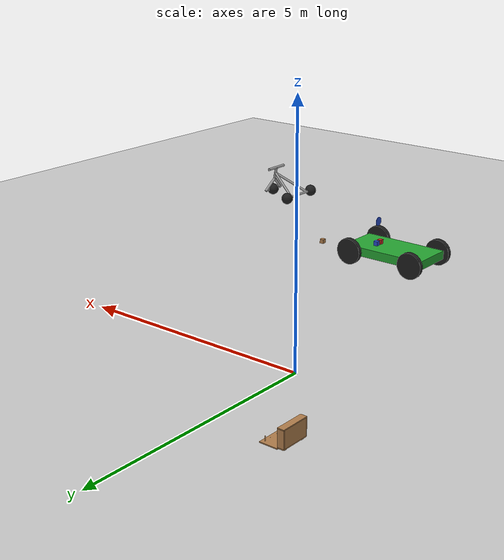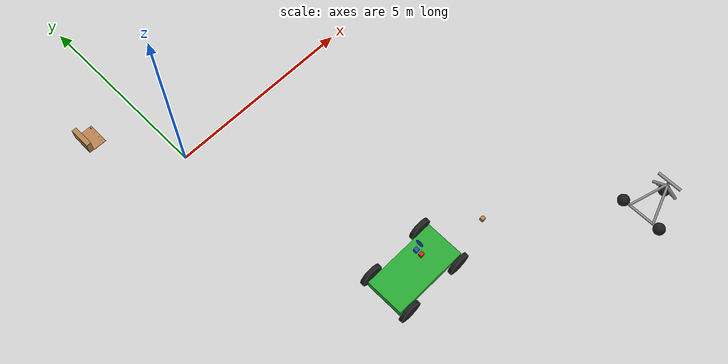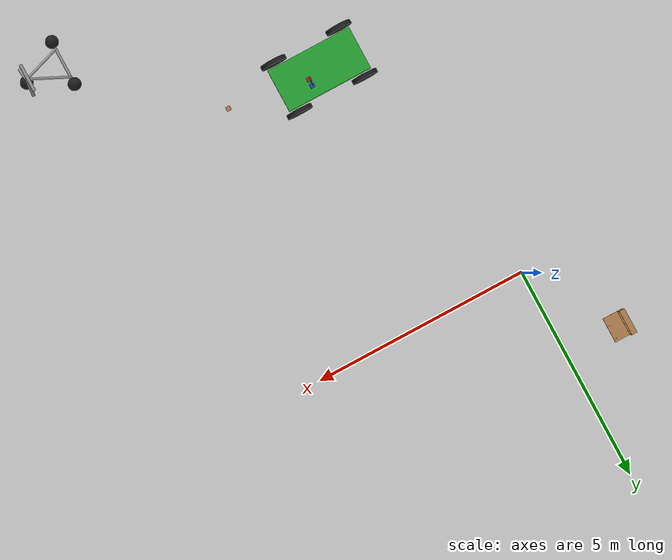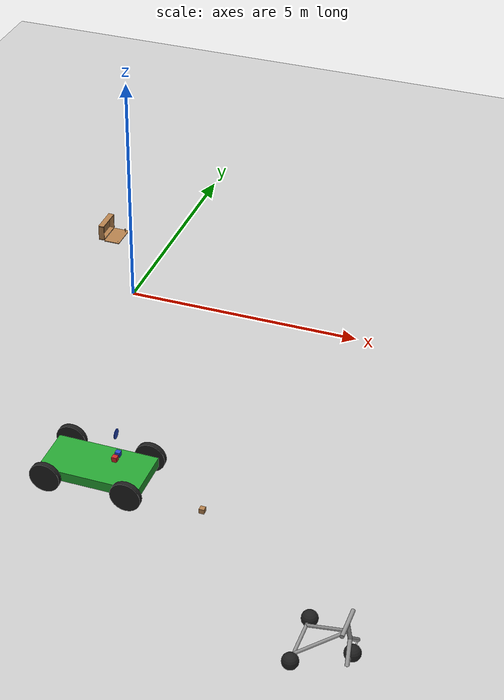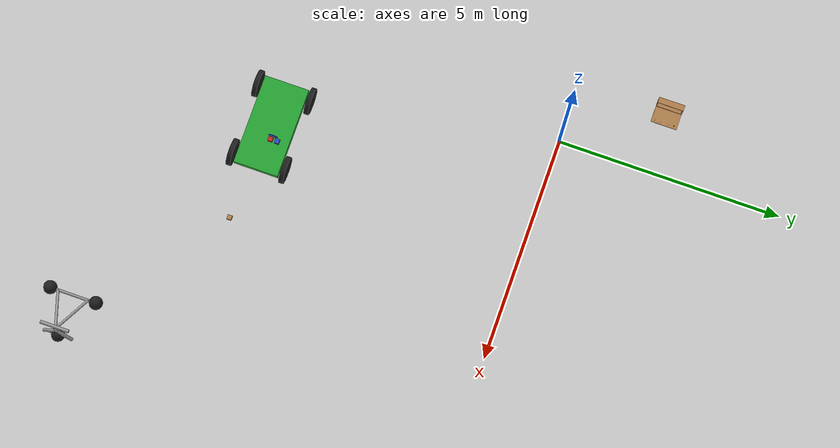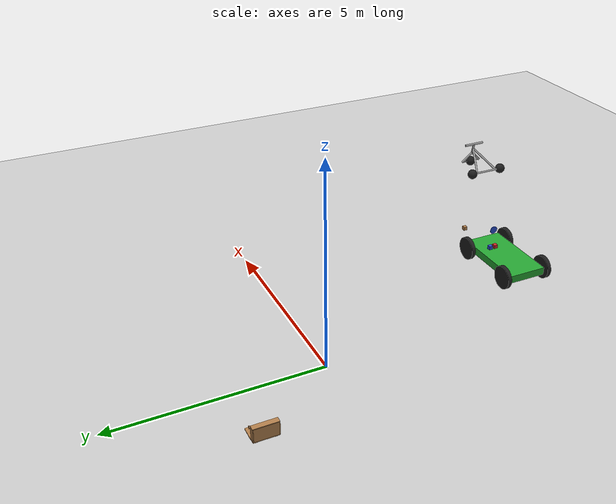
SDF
<sdf version="1.6">
 <world name="default">
  <light name="sun" type="directional">
   <cast_shadows>0</cast_shadows>
   <pose>0 0 10 0 -0 0</pose>
   <diffuse>0.8 0.8 0.8 1</diffuse>
   <specular>0.1 0.1 0.1 1</specular>
   <attenuation>
    <range>1000</range>
    <constant>0.9</constant>
    <linear>0.01</linear>
    <quadratic>0.001</quadratic>
   </attenuation>
   <direction>-0.5 0.5 -1</direction>
  </light>
  <model name="ground_plane">
   <static>1</static>
   <link name="link">
    <collision name="collision">
     <geometry><plane><normal>0 0 1</normal><size>100 100</size></plane></geometry>
     <surface><friction><ode><mu>100</mu><mu2>50</mu2></ode></friction></surface>
    </collision>
    <visual name="visual">
     <cast_shadows>0</cast_shadows>
     <geometry><plane><normal>0 0 1</normal><size>100 100</size></plane></geometry>
     <material>
      <script><uri>file://media/materials/scripts/gazebo.material</uri><name>Gazebo/Grey</name></script>
     </material>
    </visual>
   </link>
  </model>
  <gravity>0 0 -9.8</gravity>
  <magnetic_field>6e-06 2.3e-05 -4.2e-05</magnetic_field>
  <atmosphere type="adiabatic"/>
  <physics name="default_physics" default="0" type="ode">
   <max_step_size>0.001</max_step_size>
   <real_time_factor>1</real_time_factor>
   <real_time_update_rate>1000</real_time_update_rate>
  </physics>
  <scene><ambient>0.4 0.4 0.4 1</ambient><background>0.7 0.7 0.7 1</background><shadows>1</shadows></scene>
  <spherical_coordinates>
   <surface_model>EARTH_WGS84</surface_model>
   <latitude_deg>0</latitude_deg>
   <longitude_deg>0</longitude_deg>
   <elevation>0</elevation>
   <heading_deg>0</heading_deg>
  </spherical_coordinates>
  <model name="wooden_case_wooden_peg">
   <link name="wooden_case::base">
    <pose>0 0 0.024 0 -0 0</pose>
    <inertial>
     <pose>-0.022184 0 0.171592 0 -0 0</pose>
     <mass>3.96264</mass>
     <inertia>
      <ixx>0.213536</ixx>
      <ixy>0</ixy>
      <ixz>0.000779377</ixz>
      <iyy>0.0708943</iyy>
      <iyz>0</iyz>
      <izz>0.154604</izz>
     </inertia>
    </inertial>
    <collision name="collision_back">
     <pose>-0.053975 0 0.1778 0 -0 0</pose>
     <geometry><box><size>0.01905 0.5461 0.3175</size></box></geometry>
     <surface>
      <contact>
       <poissons_ratio>0.347</poissons_ratio>
       <elastic_modulus>8.8e+09</elastic_modulus>
       <ode><kp>100000</kp><kd>100</kd><max_vel>100</max_vel><min_depth>0.001</min_depth></ode>
      </contact>
      <friction>
       <torsional>
        <coefficient>1</coefficient>
        <use_patch_radius>0</use_patch_radius>
        <surface_radius>0.01</surface_radius>
       </torsional>
      </friction>
     </surface>
    </collision>
    <visual name="visual_back">
     <pose>-0.053975 0 0.1778 0 -0 0</pose>
     <geometry><box><size>0.01905 0.5461 0.3175</size></box></geometry>
     <material>
      <script><uri>file://media/materials/scripts/gazebo.material</uri><name>Gazebo/Wood</name></script>
     </material>
    </visual>
    <collision name="collision_bottom">
     <pose>0 0 0.009525 0 -0 0</pose>
     <geometry><box><size>0.127 0.5842 0.01905</size></box></geometry>
     <surface>
      <contact>
       <poissons_ratio>0.347</poissons_ratio>
       <elastic_modulus>8.8e+09</elastic_modulus>
       <ode><kp>100000</kp><kd>100</kd><max_vel>100</max_vel><min_depth>0.001</min_depth></ode>
      </contact>
      <friction>
       <torsional>
        <coefficient>1</coefficient>
        <use_patch_radius>0</use_patch_radius>
        <surface_radius>0.01</surface_radius>
       </torsional>
      </friction>
     </surface>
    </collision>
    <visual name="visual_bottom">
     <pose>0 0 0.009525 0 -0 0</pose>
     <geometry><box><size>0.127 0.5842 0.01905</size></box></geometry>
     <material>
      <script><uri>file://media/materials/scripts/gazebo.material</uri><name>Gazebo/Wood</name></script>
     </material>
    </visual>
    <collision name="collision_top">
     <pose>0 0 0.346075 0 -0 0</pose>
     <geometry><box><size>0.127 0.5842 0.01905</size></box></geometry>
     <surface>
      <contact>
       <poissons_ratio>0.347</poissons_ratio>
       <elastic_modulus>8.8e+09</elastic_modulus>
       <ode><kp>100000</kp><kd>100</kd><max_vel>100</max_vel><min_depth>0.001</min_depth></ode>
      </contact>
      <friction>
       <torsional>
        <coefficient>1</coefficient>
        <use_patch_radius>0</use_patch_radius>
        <surface_radius>0.01</surface_radius>
       </torsional>
      </friction>
     </surface>
    </collision>
    <visual name="visual_top">
     <pose>0 0 0.346075 0 -0 0</pose>
     <geometry><box><size>0.127 0.5842 0.01905</size></box></geometry>
     <material>
      <script><uri>file://media/materials/scripts/gazebo.material</uri><name>Gazebo/Wood</name></script>
     </material>
    </visual>
    <collision name="collision_left">
     <pose>0 -0.282575 0.1778 0 -0 0</pose>
     <geometry><box><size>0.127 0.01905 0.3175</size></box></geometry>
     <surface>
      <contact>
       <poissons_ratio>0.347</poissons_ratio>
       <elastic_modulus>8.8e+09</elastic_modulus>
       <ode><kp>100000</kp><kd>100</kd><max_vel>100</max_vel><min_depth>0.001</min_depth></ode>
      </contact>
      <friction>
       <torsional>
        <coefficient>1</coefficient>
        <use_patch_radius>0</use_patch_radius>
        <surface_radius>0.01</surface_radius>
       </torsional>
      </friction>
     </surface>
    </collision>
    <visual name="visual_left">
     <pose>0 -0.282575 0.1778 0 -0 0</pose>
     <geometry><box><size>0.127 0.01905 0.3175</size></box></geometry>
     <material>
      <script><uri>file://media/materials/scripts/gazebo.material</uri><name>Gazebo/Wood</name></script>
     </material>
    </visual>
    <collision name="collision_right">
     <pose>0 0.282575 0.1778 0 -0 0</pose>
     <geometry><box><size>0.127 0.01905 0.3175</size></box></geometry>
     <surface>
      <contact>
       <poissons_ratio>0.347</poissons_ratio>
       <elastic_modulus>8.8e+09</elastic_modulus>
       <ode><kp>100000</kp><kd>100</kd><max_vel>100</max_vel><min_depth>0.001</min_depth></ode>
      </contact>
      <friction>
       <torsional>
        <coefficient>1</coefficient>
        <use_patch_radius>0</use_patch_radius>
        <surface_radius>0.01</surface_radius>
       </torsional>
      </friction>
     </surface>
    </collision>
    <visual name="visual_right">
     <pose>0 0.282575 0.1778 0 -0 0</pose>
     <geometry><box><size>0.127 0.01905 0.3175</size></box></geometry>
     <material>
      <script><uri>file://media/materials/scripts/gazebo.material</uri><name>Gazebo/Wood</name></script>
     </material>
    </visual>
    <collision name="collision_block_left">
     <pose>0.0095 -0.2151 -0.012 0 -0 0</pose>
     <geometry><box><size>0.108 0.05 0.024</size></box></geometry>
     <surface>
      <contact>
       <poissons_ratio>0.347</poissons_ratio>
       <elastic_modulus>8.8e+09</elastic_modulus>
       <ode><kp>100000</kp><kd>100</kd><max_vel>100</max_vel><min_depth>0.001</min_depth></ode>
      </contact>
      <friction>
       <torsional>
        <coefficient>1</coefficient>
        <use_patch_radius>0</use_patch_radius>
        <surface_radius>0.01</surface_radius>
       </torsional>
      </friction>
     </surface>
    </collision>
    <visual name="visual_block_left">
     <pose>0.0095 -0.2151 -0.012 0 -0 0</pose>
     <geometry><box><size>0.108 0.05 0.024</size></box></geometry>
     <material>
      <script><uri>file://media/materials/scripts/gazebo.material</uri><name>Gazebo/Wood</name></script>
     </material>
    </visual>
    <collision name="collision_block_right">
     <pose>0.0095 0.2151 -0.012 0 -0 0</pose>
     <geometry><box><size>0.108 0.05 0.024</size></box></geometry>
     <surface>
      <contact>
       <poissons_ratio>0.347</poissons_ratio>
       <elastic_modulus>8.8e+09</elastic_modulus>
       <ode><kp>100000</kp><kd>100</kd><max_vel>100</max_vel><min_depth>0.001</min_depth></ode>
      </contact>
      <friction>
       <torsional>
        <coefficient>1</coefficient>
        <use_patch_radius>0</use_patch_radius>
        <surface_radius>0.01</surface_radius>
       </torsional>
      </friction>
     </surface>
    </collision>
    <visual name="visual_block_right">
     <pose>0.0095 0.2151 -0.012 0 -0 0</pose>
     <geometry><box><size>0.108 0.05 0.024</size></box></geometry>
     <material>
      <script><uri>file://media/materials/scripts/gazebo.material</uri><name>Gazebo/Wood</name></script>
     </material>
    </visual>
   </link>
   <link name="wooden_case::lid">
    <pose>0.243775 0 0.009525 0 -0 0</pose>
    <inertial>
     <mass>1.97874</mass>
     <inertia>
      <ixx>0.0563367</ixx>
      <ixy>0</ixy>
      <ixz>0</ixz>
      <iyy>0.020911</iyy>
      <iyz>0</iyz>
      <izz>0.0771281</izz>
     </inertia>
    </inertial>
    <collision name="collision">
     <geometry><box><size>0.3556 0.5842 0.01905</size></box></geometry>
     <surface>
      <contact>
       <poissons_ratio>0.347</poissons_ratio>
       <elastic_modulus>8.8e+09</elastic_modulus>
       <ode><kp>100000</kp><kd>100</kd><max_vel>100</max_vel><min_depth>0.001</min_depth></ode>
      </contact>
      <friction>
       <torsional>
        <coefficient>1</coefficient>
        <use_patch_radius>0</use_patch_radius>
        <surface_radius>0.01</surface_radius>
       </torsional>
      </friction>
     </surface>
    </collision>
    <visual name="visual">
     <geometry><box><size>0.3556 0.5842 0.01905</size></box></geometry>
     <material>
      <script><uri>file://media/materials/scripts/gazebo.material</uri><name>Gazebo/Wood</name></script>
     </material>
    </visual>
    <visual name="tee_nut_1">
     <pose>0.122 -0.216 0 0 -0 0</pose>
     <geometry><cylinder><radius>0.00635</radius><length>0.0192405</length></cylinder></geometry>
     <material>
      <script><uri>file://media/materials/scripts/gazebo.material</uri><name>Gazebo/Grey</name></script>
     </material>
    </visual>
    <visual name="tee_nut_2">
     <pose>0.122 -0.088 0 0 -0 0</pose>
     <geometry><cylinder><radius>0.00635</radius><length>0.0192405</length></cylinder></geometry>
     <material>
      <script><uri>file://media/materials/scripts/gazebo.material</uri><name>Gazebo/Grey</name></script>
     </material>
    </visual>
    <visual name="tee_nut_3">
     <pose>0.122 0.088 0 0 -0 0</pose>
     <geometry><cylinder><radius>0.00635</radius><length>0.0192405</length></cylinder></geometry>
     <material>
      <script><uri>file://media/materials/scripts/gazebo.material</uri><name>Gazebo/Grey</name></script>
     </material>
    </visual>
    <visual name="tee_nut_4">
     <pose>0.122 0.216 0 0 -0 0</pose>
     <geometry><cylinder><radius>0.00635</radius><length>0.0192405</length></cylinder></geometry>
     <material>
      <script><uri>file://media/materials/scripts/gazebo.material</uri><name>Gazebo/Grey</name></script>
     </material>
    </visual>
   </link>
   <joint name="wooden_case::lid_hinge" type="revolute">
    <pose>-0.1778 0 0.01905 0 -0 0</pose>
    <parent>wooden_case::base</parent>
    <child>wooden_case::lid</child>
    <axis>
     <xyz>0 1 0</xyz>
     <limit><upper>0.523599</upper><lower>-1.5708</lower></limit>
     <use_parent_model_frame>0</use_parent_model_frame>
     <dynamics><spring_reference>0</spring_reference><spring_stiffness>0</spring_stiffness></dynamics>
    </axis>
   </joint>
   <link name="peg::link">
    <pose>0.365774 0.216 0.05905 0 -0 0</pose>
    <inertial>
     <mass>0.0175</mass>
     <inertia>
      <ixx>9.74923e-06</ixx>
      <ixy>0</ixy>
      <ixz>0</ixz>
      <iyy>9.74923e-06</iyy>
      <iyz>0</iyz>
      <izz>8.31797e-07</izz>
     </inertia>
    </inertial>
    <collision name="collision">
     <geometry><cylinder><radius>0.00975</radius><length>0.08</length></cylinder></geometry>
     <surface>
      <contact>
       <poissons_ratio>0.347</poissons_ratio>
       <elastic_modulus>8.8e+09</elastic_modulus>
       <ode><kp>100000</kp><kd>100</kd><max_vel>100</max_vel><min_depth>0.001</min_depth></ode>
      </contact>
      <friction>
       <torsional>
        <coefficient>1</coefficient>
        <use_patch_radius>0</use_patch_radius>
        <surface_radius>0.01</surface_radius>
       </torsional>
      </friction>
     </surface>
    </collision>
    <visual name="visual">
     <geometry><cylinder><radius>0.00975</radius><length>0.08</length></cylinder></geometry>
     <material>
      <script><uri>file://media/materials/scripts/gazebo.material</uri><name>Gazebo/Wood</name></script>
     </material>
    </visual>
   </link>
   <joint name="case_peg" type="revolute">
    <child>peg::link</child>
    <parent>wooden_case::lid</parent>
    <axis>
     <xyz>0 0 1</xyz>
     <limit><upper>0</upper><lower>0</lower></limit>
     <use_parent_model_frame>0</use_parent_model_frame>
     <dynamics><spring_reference>0</spring_reference><spring_stiffness>0</spring_stiffness></dynamics>
    </axis>
   </joint>
   <pose>-1.50248 2.02358 0 0 -0 0</pose>
  </model>
  <model name="car">
   <link name="chassis">
    <pose>0 0 0.3 0 -0 0</pose>
    <collision name="collision"><geometry><box><size>2 1 0.2</size></box></geometry></collision>
    <visual name="visual">
     <geometry><box><size>2 1 0.2</size></box></geometry>
     <material>
      <script><uri>file://media/materials/scripts/gazebo.material</uri><name>Gazebo/Green</name></script>
     </material>
    </visual>
    <inertial>
     <inertia><ixx>1</ixx><ixy>0</ixy><ixz>0</ixz><iyy>1</iyy><iyz>0</iyz><izz>1</izz></inertia>
     <mass>1</mass>
    </inertial>
   </link>
   <link name="front_left_wheel">
    <pose>0.8 0.6 0.3 -0 1.5707 1.5707</pose>
    <collision name="collision">
     <geometry><cylinder><radius>0.3</radius><length>0.1</length></cylinder></geometry>
    </collision>
    <visual name="visual">
     <geometry><cylinder><radius>0.3</radius><length>0.1</length></cylinder></geometry>
     <material>
      <script><uri>file://media/materials/scripts/gazebo.material</uri><name>Gazebo/Black</name></script>
     </material>
    </visual>
    <inertial>
     <inertia><ixx>1</ixx><ixy>0</ixy><ixz>0</ixz><iyy>1</iyy><iyz>0</iyz><izz>1</izz></inertia>
     <mass>1</mass>
    </inertial>
   </link>
   <link name="front_right_wheel">
    <pose>0.8 -0.6 0.3 -0 1.5707 1.5707</pose>
    <collision name="collision">
     <geometry><cylinder><radius>0.3</radius><length>0.1</length></cylinder></geometry>
    </collision>
    <visual name="visual">
     <geometry><cylinder><radius>0.3</radius><length>0.1</length></cylinder></geometry>
     <material>
      <script><uri>file://media/materials/scripts/gazebo.material</uri><name>Gazebo/Black</name></script>
     </material>
    </visual>
    <inertial>
     <inertia><ixx>1</ixx><ixy>0</ixy><ixz>0</ixz><iyy>1</iyy><iyz>0</iyz><izz>1</izz></inertia>
     <mass>1</mass>
    </inertial>
   </link>
   <link name="back_right_wheel">
    <pose>-0.8 -0.6 0.3 -0 1.5707 1.5707</pose>
    <collision name="collision">
     <geometry><cylinder><radius>0.3</radius><length>0.1</length></cylinder></geometry>
    </collision>
    <visual name="visual">
     <geometry><cylinder><radius>0.3</radius><length>0.1</length></cylinder></geometry>
     <material>
      <script><uri>file://media/materials/scripts/gazebo.material</uri><name>Gazebo/Black</name></script>
     </material>
    </visual>
    <inertial>
     <inertia><ixx>1</ixx><ixy>0</ixy><ixz>0</ixz><iyy>1</iyy><iyz>0</iyz><izz>1</izz></inertia>
     <mass>1</mass>
    </inertial>
   </link>
   <link name="back_left_wheel">
    <pose>-0.8 0.6 0.3 -0 1.5707 1.5707</pose>
    <collision name="collision">
     <geometry><cylinder><radius>0.3</radius><length>0.1</length></cylinder></geometry>
    </collision>
    <visual name="visual">
     <geometry><cylinder><radius>0.3</radius><length>0.1</length></cylinder></geometry>
     <material>
      <script><uri>file://media/materials/scripts/gazebo.material</uri><name>Gazebo/Black</name></script>
     </material>
    </visual>
    <inertial>
     <inertia><ixx>1</ixx><ixy>0</ixy><ixz>0</ixz><iyy>1</iyy><iyz>0</iyz><izz>1</izz></inertia>
     <mass>1</mass>
    </inertial>
   </link>
   <link name="gas_pedal">
    <pose>0.3 0.1 0.5 0 -0 0</pose>
    <collision name="collision"><geometry><box><size>0.1 0.1 0.1</size></box></geometry></collision>
    <visual name="visual">
     <geometry><box><size>0.1 0.1 0.1</size></box></geometry>
     <material>
      <script><uri>file://media/materials/scripts/gazebo.material</uri><name>Gazebo/Red</name></script>
     </material>
    </visual>
    <inertial>
     <inertia><ixx>1</ixx><ixy>0</ixy><ixz>0</ixz><iyy>1</iyy><iyz>0</iyz><izz>1</izz></inertia>
     <mass>1</mass>
    </inertial>
   </link>
   <link name="brake_pedal">
    <pose>0.3 0.25 0.5 0 -0 0</pose>
    <collision name="collision"><geometry><box><size>0.1 0.1 0.1</size></box></geometry></collision>
    <visual name="visual">
     <geometry><box><size>0.1 0.1 0.1</size></box></geometry>
     <material>
      <script><uri>file://media/materials/scripts/gazebo.material</uri><name>Gazebo/Blue</name></script>
     </material>
    </visual>
    <inertial>
     <inertia><ixx>1</ixx><ixy>0</ixy><ixz>0</ixz><iyy>1</iyy><iyz>0</iyz><izz>1</izz></inertia>
     <mass>1</mass>
    </inertial>
   </link>
   <link name="steering_wheel">
    <pose>0.3 0.2 1 0 1.5707 0</pose>
    <collision name="collision">
     <geometry><cylinder><radius>0.1</radius><length>0.01</length></cylinder></geometry>
    </collision>
    <visual name="visual">
     <geometry><cylinder><radius>0.1</radius><length>0.01</length></cylinder></geometry>
     <material>
      <script><uri>file://media/materials/scripts/gazebo.material</uri><name>Gazebo/Blue</name></script>
     </material>
    </visual>
    <inertial>
     <inertia><ixx>1</ixx><ixy>0</ixy><ixz>0</ixz><iyy>1</iyy><iyz>0</iyz><izz>1</izz></inertia>
     <mass>1</mass>
    </inertial>
   </link>
   <joint name="gas_joint" type="prismatic">
    <parent>chassis</parent>
    <child>gas_pedal</child>
    <axis>
     <xyz>1 0 0</xyz>
     <limit><lower>0</lower><upper>0.2</upper></limit>
     <use_parent_model_frame>1</use_parent_model_frame>
     <dynamics><spring_reference>0</spring_reference><spring_stiffness>0</spring_stiffness></dynamics>
    </axis>
   </joint>
   <joint name="brake_joint" type="prismatic">
    <parent>chassis</parent>
    <child>brake_pedal</child>
    <axis>
     <xyz>1 0 0</xyz>
     <limit><lower>0</lower><upper>0.2</upper></limit>
     <use_parent_model_frame>1</use_parent_model_frame>
     <dynamics><spring_reference>0</spring_reference><spring_stiffness>0</spring_stiffness></dynamics>
    </axis>
   </joint>
   <joint name="steering_joint" type="revolute">
    <parent>chassis</parent>
    <child>steering_wheel</child>
    <axis>
     <xyz>1 0 0</xyz>
     <limit><lower>-7.853</lower><upper>7.853</upper></limit>
     <use_parent_model_frame>1</use_parent_model_frame>
     <dynamics><spring_reference>0</spring_reference><spring_stiffness>0</spring_stiffness></dynamics>
    </axis>
   </joint>
   <joint name="front_left_joint" type="revolute2">
    <parent>chassis</parent>
    <child>front_left_wheel</child>
    <axis>
     <xyz>0 0 1</xyz>
     <limit><lower>0</lower><upper>0</upper></limit>
     <use_parent_model_frame>1</use_parent_model_frame>
     <dynamics><spring_reference>0</spring_reference><spring_stiffness>0</spring_stiffness></dynamics>
    </axis>
    <axis2>
     <xyz>0 1 0</xyz>
     <use_parent_model_frame>1</use_parent_model_frame>
     <dynamics><spring_reference>0</spring_reference><spring_stiffness>0</spring_stiffness></dynamics>
    </axis2>
    <physics><ode><limit><cfm>0</cfm><erp>0.9</erp></limit></ode></physics>
   </joint>
   <joint name="front_right_joint" type="revolute2">
    <parent>chassis</parent>
    <child>front_right_wheel</child>
    <axis>
     <xyz>0 0 1</xyz>
     <limit><lower>0</lower><upper>0</upper></limit>
     <use_parent_model_frame>1</use_parent_model_frame>
     <dynamics><spring_reference>0</spring_reference><spring_stiffness>0</spring_stiffness></dynamics>
    </axis>
    <axis2>
     <xyz>0 1 0</xyz>
     <use_parent_model_frame>1</use_parent_model_frame>
     <dynamics><spring_reference>0</spring_reference><spring_stiffness>0</spring_stiffness></dynamics>
    </axis2>
    <physics><ode><limit><cfm>0</cfm><erp>0.9</erp></limit></ode></physics>
   </joint>
   <joint name="back_right_joint" type="revolute2">
    <parent>chassis</parent>
    <child>back_right_wheel</child>
    <axis>
     <xyz>0 0 1</xyz>
     <limit><lower>0</lower><upper>0</upper></limit>
     <use_parent_model_frame>1</use_parent_model_frame>
     <dynamics><spring_reference>0</spring_reference><spring_stiffness>0</spring_stiffness></dynamics>
    </axis>
    <axis2>
     <xyz>0 1 0</xyz>
     <use_parent_model_frame>1</use_parent_model_frame>
     <dynamics><spring_reference>0</spring_reference><spring_stiffness>0</spring_stiffness></dynamics>
    </axis2>
    <physics><ode><limit><cfm>0</cfm><erp>0.9</erp></limit></ode></physics>
   </joint>
   <joint name="back_left_joint" type="revolute2">
    <parent>chassis</parent>
    <child>back_left_wheel</child>
    <axis>
     <xyz>0 0 1</xyz>
     <limit><lower>0</lower><upper>0</upper></limit>
     <use_parent_model_frame>1</use_parent_model_frame>
     <dynamics><spring_reference>0</spring_reference><spring_stiffness>0</spring_stiffness></dynamics>
    </axis>
    <axis2>
     <xyz>0 1 0</xyz>
     <use_parent_model_frame>1</use_parent_model_frame>
     <dynamics><spring_reference>0</spring_reference><spring_stiffness>0</spring_stiffness></dynamics>
    </axis2>
    <physics><ode><limit><cfm>0</cfm><erp>0.9</erp></limit></ode></physics>
   </joint>
   <plugin name="vehicle" filename="libVehiclePlugin.so">
    <front_left>front_left_joint</front_left>
    <front_right>front_right_joint</front_right>
    <back_left>back_left_joint</back_left>
    <back_right>back_right_joint</back_right>
    <gas>gas_joint</gas>
    <brake>brake_joint</brake>
    <steering>steering_joint</steering>
    <front_power>10</front_power>
    <rear_power>10</rear_power>
    <tire_angle_range>0.5</tire_angle_range>
    <max_speed>10</max_speed>
    <aero_load>0.1</aero_load>
   </plugin>
   <pose>1.79596 -5.96117 0 0 -0 0</pose>
  </model>
  <model name="wood_cube_10cm">
   <link name="link">
    <pose>0 0 0.05 0 -0 0</pose>
    <inertial>
     <mass>0.5167</mass>
     <inertia>
      <ixx>0.000861167</ixx>
      <ixy>0</ixy>
      <ixz>0</ixz>
      <iyy>0.000861167</iyy>
      <iyz>0</iyz>
      <izz>0.000861167</izz>
     </inertia>
    </inertial>
    <collision name="collision">
     <geometry><box><size>0.1 0.1 0.1</size></box></geometry>
     <surface>
      <contact>
       <poissons_ratio>0.347</poissons_ratio>
       <elastic_modulus>8.8e+09</elastic_modulus>
       <ode><kp>100000</kp><kd>100</kd><max_vel>100</max_vel><min_depth>0.001</min_depth></ode>
      </contact>
      <friction>
       <torsional>
        <coefficient>1</coefficient>
        <use_patch_radius>0</use_patch_radius>
        <surface_radius>0.01</surface_radius>
       </torsional>
      </friction>
     </surface>
    </collision>
    <visual name="visual">
     <geometry><box><size>0.1 0.1 0.1</size></box></geometry>
     <material>
      <script><uri>file://media/materials/scripts/gazebo.material</uri><name>Gazebo/Wood</name></script>
     </material>
    </visual>
   </link>
   <pose>3.92861 -6.17078 0 0 -0 0</pose>
  </model>
  <model name="trisphere_cycle">
   <link name="frame">
    <pose>-0.408559 0 0.385023 0 -0.522021 0</pose>
    <inertial>
     <mass>10</mass>
     <inertia><ixx>0.228</ixx><iyy>0.743521</iyy><izz>0.965521</izz><ixy>0</ixy><ixz>0</ixz><iyz>0</iyz></inertia>
    </inertial>
    <collision name="axle_collision">
     <pose>-0.471335 0 0 1.5708 -0 0</pose>
     <geometry><cylinder><length>1.03923</length><radius>0.03</radius></cylinder></geometry>
    </collision>
    <visual name="axle_visual">
     <pose>-0.471335 0 0 1.5708 -0 0</pose>
     <geometry><cylinder><length>1.03923</length><radius>0.03</radius></cylinder></geometry>
     <material>
      <script><uri>file://media/materials/scripts/gazebo.material</uri><name>Gazebo/Grey</name></script>
     </material>
    </visual>
    <collision name="frame_left_collision">
     <pose>0 0.171552 0 -2.79253 1.57079 3.14159</pose>
     <geometry><cylinder><length>1.00317</length><radius>0.03</radius></cylinder></geometry>
    </collision>
    <visual name="frame_left_visual">
     <pose>0 0.171552 0 -2.79253 1.57079 3.14159</pose>
     <geometry><cylinder><length>1.00317</length><radius>0.03</radius></cylinder></geometry>
     <material>
      <script><uri>file://media/materials/scripts/gazebo.material</uri><name>Gazebo/Grey</name></script>
     </material>
    </visual>
    <collision name="frame_right_collision">
     <pose>0 -0.171552 0 2.79253 1.57079 -3.14159</pose>
     <geometry><cylinder><length>1.00317</length><radius>0.03</radius></cylinder></geometry>
    </collision>
    <visual name="frame_right_visual">
     <pose>0 -0.171552 0 2.79253 1.57079 -3.14159</pose>
     <geometry><cylinder><length>1.00317</length><radius>0.03</radius></cylinder></geometry>
     <material>
      <script><uri>file://media/materials/scripts/gazebo.material</uri><name>Gazebo/Grey</name></script>
     </material>
    </visual>
   </link>
   <link name="fork">
    <pose>0.041441 0 0.385023 0 -0.174533 0</pose>
    <inertial>
     <mass>3</mass>
     <inertia>
      <ixx>0.158203</ixx>
      <iyy>0.0583594</iyy>
      <izz>0.102656</izz>
      <ixy>0</ixy>
      <ixz>0</ixz>
      <iyz>0</iyz>
     </inertia>
    </inertial>
    <collision name="handlebars_collision">
     <pose>0 0 0.397748 1.5708 -0 0</pose>
     <geometry><cylinder><length>0.636396</length><radius>0.0375</radius></cylinder></geometry>
    </collision>
    <visual name="handlebars_visual">
     <pose>0 0 0.397748 1.5708 -0 0</pose>
     <geometry><cylinder><length>0.636396</length><radius>0.0375</radius></cylinder></geometry>
     <material>
      <script><uri>file://media/materials/scripts/gazebo.material</uri><name>Gazebo/Grey</name></script>
     </material>
    </visual>
    <collision name="headtube_collision">
     <pose>0 0 0.238649 0 -0 0</pose>
     <geometry><cylinder><length>0.318198</length><radius>0.0375</radius></cylinder></geometry>
    </collision>
    <visual name="headtube_visual">
     <pose>0 0 0.238649 0 -0 0</pose>
     <geometry><cylinder><length>0.318198</length><radius>0.0375</radius></cylinder></geometry>
     <material>
      <script><uri>file://media/materials/scripts/gazebo.material</uri><name>Gazebo/Grey</name></script>
     </material>
    </visual>
    <collision name="spindle_collision">
     <pose>0 0 -0.238649 1.5708 -0 0</pose>
     <geometry><cylinder><length>0.636396</length><radius>0.015</radius></cylinder></geometry>
    </collision>
    <visual name="spindle_visual">
     <pose>0 0 -0.238649 1.5708 -0 0</pose>
     <geometry><cylinder><length>0.636396</length><radius>0.015</radius></cylinder></geometry>
     <material>
      <script><uri>file://media/materials/scripts/gazebo.material</uri><name>Gazebo/Grey</name></script>
     </material>
    </visual>
    <collision name="fork_left_collision">
     <pose>0 0.159099 -0.07955 0.785398 -0 0</pose>
     <geometry><cylinder><length>0.45</length><radius>0.0375</radius></cylinder></geometry>
    </collision>
    <visual name="fork_left_visual">
     <pose>0 0.159099 -0.07955 0.785398 -0 0</pose>
     <geometry><cylinder><length>0.45</length><radius>0.0375</radius></cylinder></geometry>
     <material>
      <script><uri>file://media/materials/scripts/gazebo.material</uri><name>Gazebo/Grey</name></script>
     </material>
    </visual>
    <collision name="fork_right_collision">
     <pose>0 -0.159099 -0.07955 -0.785398 0 0</pose>
     <geometry><cylinder><length>0.45</length><radius>0.0375</radius></cylinder></geometry>
    </collision>
    <visual name="fork_right_visual">
     <pose>0 -0.159099 -0.07955 -0.785398 0 0</pose>
     <geometry><cylinder><length>0.45</length><radius>0.0375</radius></cylinder></geometry>
     <material>
      <script><uri>file://media/materials/scripts/gazebo.material</uri><name>Gazebo/Grey</name></script>
     </material>
    </visual>
   </link>
   <link name="wheel_front">
    <pose>0.082882 0 0.15 0 -0 0</pose>
    <inertial>
     <mass>0.5</mass>
     <inertia><ixx>0.0045</ixx><iyy>0.0045</iyy><izz>0.0045</izz><ixy>0</ixy><ixz>0</ixz><iyz>0</iyz></inertia>
    </inertial>
    <collision name="collision">
     <geometry><sphere><radius>0.15</radius></sphere></geometry>
     <surface><contact><ode><kp>1e+08</kp><kd>1</kd><min_depth>0.0005</min_depth></ode></contact></surface>
    </collision>
    <visual name="visual">
     <geometry><sphere><radius>0.15</radius></sphere></geometry>
     <material>
      <script><uri>file://media/materials/scripts/gazebo.material</uri><name>Gazebo/Black</name></script>
     </material>
    </visual>
   </link>
   <joint name="wheel_front_steer" type="revolute">
    <parent>frame</parent>
    <child>fork</child>
    <axis>
     <xyz>0 0 1</xyz>
     <limit><lower>-0.959931</lower><upper>0.959931</upper></limit>
     <use_parent_model_frame>0</use_parent_model_frame>
     <dynamics><spring_reference>0</spring_reference><spring_stiffness>0</spring_stiffness></dynamics>
    </axis>
   </joint>
   <joint name="wheel_front_spin" type="revolute">
    <parent>fork</parent>
    <child>wheel_front</child>
    <axis>
     <xyz>0 1 0</xyz>
     <use_parent_model_frame>0</use_parent_model_frame>
     <limit><lower>-1e+16</lower><upper>1e+16</upper></limit>
     <dynamics><spring_reference>0</spring_reference><spring_stiffness>0</spring_stiffness></dynamics>
    </axis>
   </joint>
   <link name="wheel_rear_left">
    <pose>-0.817118 0.519615 0.15 0 -0 0</pose>
    <inertial>
     <mass>0.5</mass>
     <inertia><ixx>0.0045</ixx><iyy>0.0045</iyy><izz>0.0045</izz><ixy>0</ixy><ixz>0</ixz><iyz>0</iyz></inertia>
    </inertial>
    <collision name="collision">
     <geometry><sphere><radius>0.15</radius></sphere></geometry>
     <surface><contact><ode><kp>1e+08</kp><kd>1</kd><min_depth>0.0005</min_depth></ode></contact></surface>
    </collision>
    <visual name="visual">
     <geometry><sphere><radius>0.15</radius></sphere></geometry>
     <material>
      <script><uri>file://media/materials/scripts/gazebo.material</uri><name>Gazebo/Black</name></script>
     </material>
    </visual>
   </link>
   <joint name="wheel_rear_left_spin" type="revolute">
    <parent>frame</parent>
    <child>wheel_rear_left</child>
    <axis>
     <xyz>0 1 0</xyz>
     <use_parent_model_frame>0</use_parent_model_frame>
     <limit><lower>-1e+16</lower><upper>1e+16</upper></limit>
     <dynamics><spring_reference>0</spring_reference><spring_stiffness>0</spring_stiffness></dynamics>
    </axis>
   </joint>
   <link name="wheel_rear_right">
    <pose>-0.817118 -0.519615 0.15 0 -0 0</pose>
    <inertial>
     <mass>0.5</mass>
     <inertia><ixx>0.0045</ixx><iyy>0.0045</iyy><izz>0.0045</izz><ixy>0</ixy><ixz>0</ixz><iyz>0</iyz></inertia>
    </inertial>
    <collision name="collision">
     <geometry><sphere><radius>0.15</radius></sphere></geometry>
     <surface><contact><ode><kp>1e+08</kp><kd>1</kd><min_depth>0.0005</min_depth></ode></contact></surface>
    </collision>
    <visual name="visual">
     <geometry><sphere><radius>0.15</radius></sphere></geometry>
     <material>
      <script><uri>file://media/materials/scripts/gazebo.material</uri><name>Gazebo/Black</name></script>
     </material>
    </visual>
   </link>
   <joint name="wheel_rear_right_spin" type="revolute">
    <parent>frame</parent>
    <child>wheel_rear_right</child>
    <axis>
     <xyz>0 1 0</xyz>
     <use_parent_model_frame>0</use_parent_model_frame>
     <limit><lower>-1e+16</lower><upper>1e+16</upper></limit>
     <dynamics><spring_reference>0</spring_reference><spring_stiffness>0</spring_stiffness></dynamics>
    </axis>
   </joint>
   <pose>7.43698 -8.73706 0 0 -0 0</pose>
  </model>
 </world>
</sdf>
